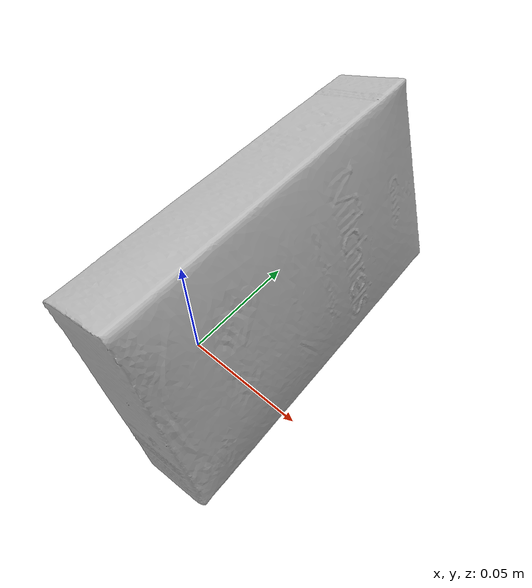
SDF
<?xml version='1.0'?>
<sdf version="1.4">
  <model name="MilkRice">
    <static>false</static>
    <link name="link">
      <inertial>
        <pose>0.0015118640227290698 0.04845509862694058 0.002097646400448336 1.5736903257287758 0.30245417664091445 -3.1116060798424856</pose>
        <mass>0.07252729269302781</mass>
        <inertia>
          <ixx>0.00024080491870081178</ixx>
          <ixy>-3.2887852098958083e-20</ixy>
          <ixz>1.1931500095115482e-21</ixz>
          <iyy>0.00018922228450032473</iyy>
          <iyz>-1.4170023190385613e-20</iyz>
          <izz>7.137904585309787e-05</izz>
        </inertia>
      </inertial>
      <collision name="collision">
        <geometry>
          <mesh>
            <!-- Use a downsampled mesh for collisions -->
            <uri>model:///MilkRice/MilkRice_250_collision.obj</uri>
	        </mesh>
        </geometry>
        <surface>
      </surface>
      </collision>
      <visual name="visual">
        <geometry>
          <mesh>
            <uri>model:///MilkRice/MilkRice_25k_tex.obj</uri>
	        </mesh>
        </geometry>
        <material>
          <script>
            <uri>model:///MilkRice/MilkRice.material</uri>
            <name>MilkRice</name>
          </script>
        </material>
      </visual>
    </link>
  </model>
</sdf>
